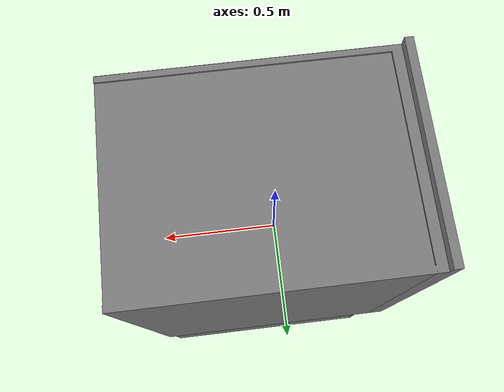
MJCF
<mujoco model="partnet_785d6d568e0c7ea5575f4e5007488531">
    <compiler angle="radian" />
    <option gravity="0 0 0"/>
    <size njmax="500" nconmax="100" />
    <asset>
        <mesh name="new-5" file="new-5.stl" />
        <mesh name="new-8" file="new-8.stl" />
        <mesh name="new-4" file="new-4.stl" />
        <mesh name="new-3" file="new-3.stl" />
        <mesh name="new-2" file="new-2.stl" />
        <mesh name="new-1" file="new-1.stl" />
        <mesh name="new-0" file="new-0.stl" />
        <mesh name="new-7" file="new-7.stl" />
    </asset>
    <worldbody>
    <body>
        <body name="object" >
        <geom quat="0.5 0.5 -0.5 -0.5" type="mesh" group="0" mesh="new-8" />
        <geom quat="0.5 0.5 -0.5 -0.5" type="mesh" group="0" mesh="new-4" />
        <geom quat="0.5 0.5 -0.5 -0.5" type="mesh" group="0" mesh="new-3" />
        <geom quat="0.5 0.5 -0.5 -0.5" type="mesh" group="0" mesh="new-2" />
        <geom quat="0.5 0.5 -0.5 -0.5" type="mesh" group="0" mesh="new-1" />
        <geom quat="0.5 0.5 -0.5 -0.5" type="mesh" group="0" mesh="new-0" />
        <geom quat="0.5 0.5 -0.5 -0.5" type="mesh" group="0" mesh="new-7" />
        <body name="link_0" pos="-0.437532 -0.407398 -0.445902" quat="0.5 0.5 -0.5 -0.5" gravcomp="1">
            <inertial pos="-0.4101 0.554497 0.0555271" quat="0.497242 0.502516 -0.501348 0.498877" mass="68.7029" diaginertia="11.5805 7.63474 4.00435" />
            <joint name="joint_0" pos="0 0 0" axis="1 0 0" limited="true" range="0 1.5708" />
            <geom pos="-0.407398 0.445902 -0.437532" type="mesh" group="0" mesh="new-5" />
        </body>
    </body>
        <site name="bottom_site" pos="0 0 -0.3" rgba="0 0 0 0" size="0.005"/>
        <site name="top_site" pos="0 0 0.3" rgba="0 0 0 0" size="0.005"/>
        <site name="horizontal_radius_site" pos="0.3 0 0" rgba="0 0 0 0" size="0.1"/>
    </body>
    </worldbody>
</mujoco>
